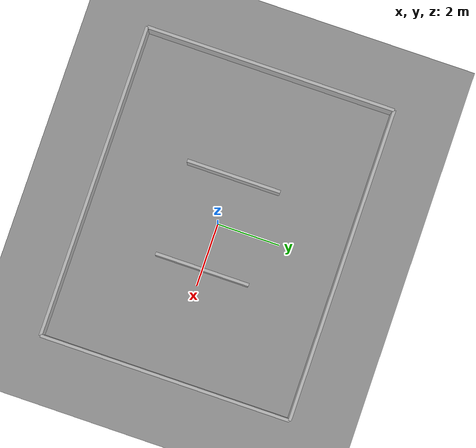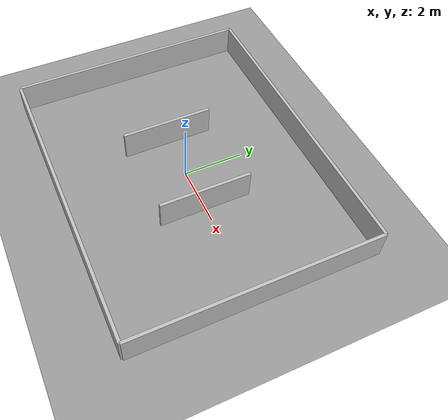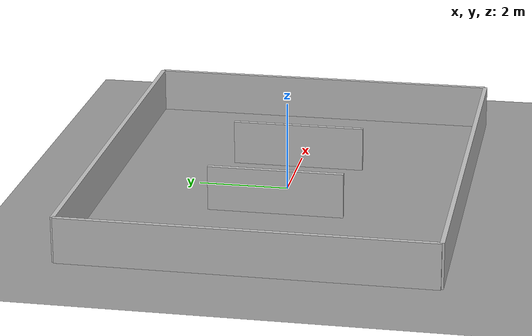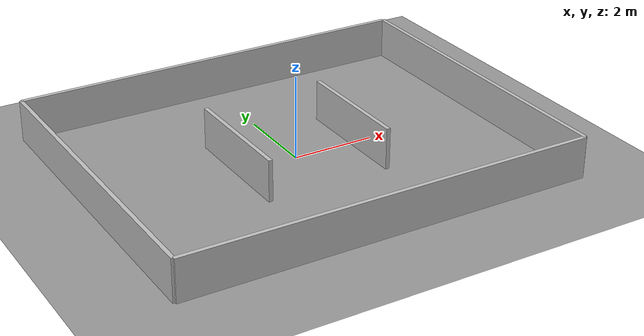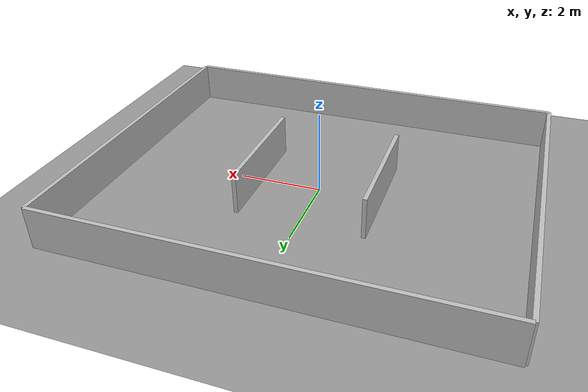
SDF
<?xml version="1.0" ?>
<sdf version="1.8">
  <world name="multi_room">
    <physics name="default_physics" type="dartsim">
      <max_step_size>0.0005</max_step_size>
      <real_time_factor>1.0</real_time_factor>
      <real_time_update_rate>2000</real_time_update_rate>
    </physics>
    <scene>
      <ambient>0.6 0.6 0.6 1</ambient>
      <background>0.5 0.5 0.5 1</background>
      <shadows>false</shadows>
    </scene>
    <gui fullscreen="0">
      <camera name="user_camera">
        <pose>1 1 1 0 0.5 -2.5</pose>
      </camera>
    </gui>
    <plugin filename="gz-sim-physics-system" name="gz::sim::systems::Physics"/>
    <plugin filename="gz-sim-user-commands-system" name="gz::sim::systems::UserCommands"/>
    <plugin filename="gz-sim-scene-broadcaster-system" name="gz::sim::systems::SceneBroadcaster"/>
    <plugin filename="gz-sim-sensors-system" name="gz::sim::systems::Sensors">
      <render_engine>ogre2</render_engine>
    </plugin>
    <light type="directional" name="sun">
      <cast_shadows>true</cast_shadows>
      <pose>0 0 10 0 0 0</pose>
      <diffuse>1.0 1.0 1.0 1</diffuse>
      <specular>0.2 0.2 0.2 1</specular>
      <direction>-0.5 0.1 -0.9</direction>
    </light>
    <model name="ground_plane">
      <static>true</static>
      <link name="link">
        <collision name="collision">
          <geometry><plane><normal>0 0 1</normal></plane></geometry>
        </collision>
        <visual name="visual">
          <geometry><plane><normal>0 0 1</normal><size>100 100</size></plane></geometry>
          <material>
            <ambient>0.6 0.6 0.6 1</ambient>
            <diffuse>0.6 0.6 0.6 1</diffuse>
          </material>
        </visual>
      </link>
    </model>

    <!-- Outer perimeter -->
    <model name="wall_north">
      <static>true</static>
      <pose>0 4 0.5 0 0 0</pose>
      <link name="link">
        <collision name="collision"><geometry><box><size>10 0.1 1</size></box></geometry></collision>
        <visual name="visual">
          <geometry><box><size>10 0.1 1</size></box></geometry>
          <material><ambient>0.75 0.75 0.75 1</ambient><diffuse>0.75 0.75 0.75 1</diffuse></material>
        </visual>
      </link>
    </model>
    <model name="wall_south">
      <static>true</static>
      <pose>0 -4 0.5 0 0 0</pose>
      <link name="link">
        <collision name="collision"><geometry><box><size>10 0.1 1</size></box></geometry></collision>
        <visual name="visual">
          <geometry><box><size>10 0.1 1</size></box></geometry>
          <material><ambient>0.75 0.75 0.75 1</ambient><diffuse>0.75 0.75 0.75 1</diffuse></material>
        </visual>
      </link>
    </model>
    <model name="wall_east">
      <static>true</static>
      <pose>5 0 0.5 0 0 0</pose>
      <link name="link">
        <collision name="collision"><geometry><box><size>0.1 8 1</size></box></geometry></collision>
        <visual name="visual">
          <geometry><box><size>0.1 8 1</size></box></geometry>
          <material><ambient>0.75 0.75 0.75 1</ambient><diffuse>0.75 0.75 0.75 1</diffuse></material>
        </visual>
      </link>
    </model>
    <model name="wall_west">
      <static>true</static>
      <pose>-5 0 0.5 0 0 0</pose>
      <link name="link">
        <collision name="collision"><geometry><box><size>0.1 8 1</size></box></geometry></collision>
        <visual name="visual">
          <geometry><box><size>0.1 8 1</size></box></geometry>
          <material><ambient>0.75 0.75 0.75 1</ambient><diffuse>0.75 0.75 0.75 1</diffuse></material>
        </visual>
      </link>
    </model>

    <!-- Middle divider wall with doorway gap -->
    <model name="divider_left">
      <static>true</static>
      <pose>-1.5 0 0.5 0 0 1.5708</pose>
      <link name="link">
        <collision name="collision"><geometry><box><size>3 0.1 1</size></box></geometry></collision>
        <visual name="visual">
          <geometry><box><size>3 0.1 1</size></box></geometry>
          <material><ambient>0.75 0.75 0.75 1</ambient><diffuse>0.75 0.75 0.75 1</diffuse></material>
        </visual>
      </link>
    </model>
    <model name="divider_right">
      <static>true</static>
      <pose>1.5 0 0.5 0 0 1.5708</pose>
      <link name="link">
        <collision name="collision"><geometry><box><size>3 0.1 1</size></box></geometry></collision>
        <visual name="visual">
          <geometry><box><size>3 0.1 1</size></box></geometry>
          <material><ambient>0.75 0.75 0.75 1</ambient><diffuse>0.75 0.75 0.75 1</diffuse></material>
        </visual>
      </link>
    </model>
  </world>
</sdf>
